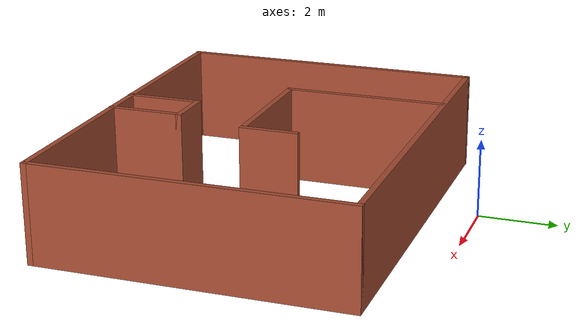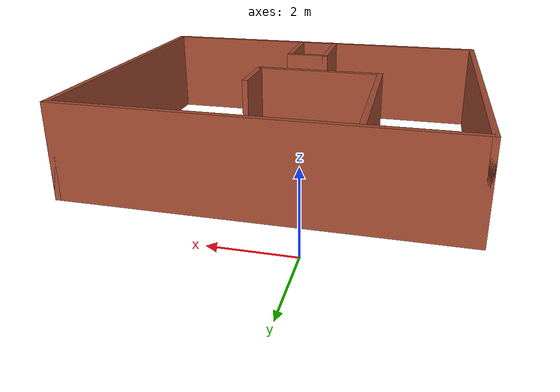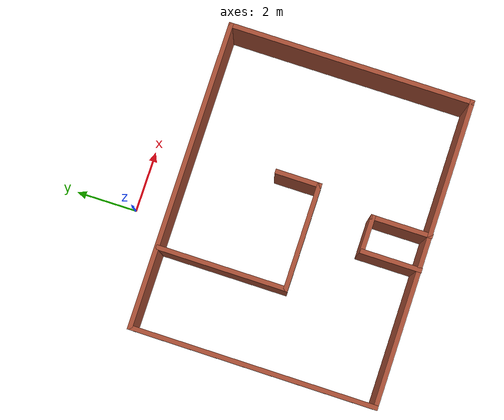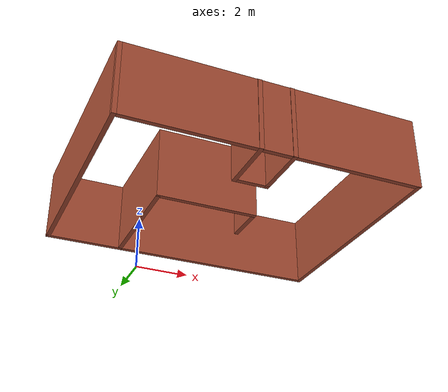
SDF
<?xml version='1.0'?>
<sdf version='1.6'>
  <model name='CASA1'>
    <pose frame=''>1.315 -5.14208 0 0 -0 0</pose>
    <link name='Wall_0'>
      <collision name='Wall_0_Collision'>
        <geometry>
          <box>
            <size>10 0.15 2.5</size>
          </box>
        </geometry>
        <pose frame=''>0 0 1.25 0 -0 0</pose>
      </collision>
      <visual name='Wall_0_Visual'>
        <pose frame=''>0 0 1.25 0 -0 0</pose>
        <geometry>
          <box>
            <size>10 0.15 2.5</size>
          </box>
        </geometry>
        <material>
          <script>
            <uri>file://media/materials/scripts/gazebo.material</uri>
            <name>Gazebo/Bricks</name>
          </script>
          <ambient>1 1 1 1</ambient>
        </material>
        <meta>
          <layer>0</layer>
        </meta>
      </visual>
      <pose frame=''>0 3.93208 0 0 -0 0</pose>
    </link>
    <link name='Wall_13'>
      <collision name='Wall_13_Collision'>
        <geometry>
          <box>
            <size>2 0.15 2.5</size>
          </box>
        </geometry>
        <pose frame=''>0 0 1.25 0 -0 0</pose>
      </collision>
      <visual name='Wall_13_Visual'>
        <pose frame=''>0 0 1.25 0 -0 0</pose>
        <geometry>
          <box>
            <size>2 0.15 2.5</size>
          </box>
        </geometry>
        <material>
          <script>
            <uri>file://media/materials/scripts/gazebo.material</uri>
            <name>Gazebo/Bricks</name>
          </script>
          <ambient>1 1 1 1</ambient>
        </material>
        <meta>
          <layer>0</layer>
        </meta>
      </visual>
      <pose frame=''>-0.526536 -3.00708 0 0 -0 1.5708</pose>
    </link>
    <link name='Wall_14'>
      <collision name='Wall_14_Collision'>
        <geometry>
          <box>
            <size>1.25 0.15 2.5</size>
          </box>
        </geometry>
        <pose frame=''>0 0 1.25 0 -0 0</pose>
      </collision>
      <visual name='Wall_14_Visual'>
        <pose frame=''>0 0 1.25 0 -0 0</pose>
        <geometry>
          <box>
            <size>1.25 0.15 2.5</size>
          </box>
        </geometry>
        <material>
          <script>
            <uri>file://media/materials/scripts/gazebo.material</uri>
            <name>Gazebo/Bricks</name>
          </script>
          <ambient>1 1 1 1</ambient>
        </material>
        <meta>
          <layer>0</layer>
        </meta>
      </visual>
      <pose frame=''>0.023464 -2.08208 0 0 -0 0</pose>
    </link>
    <link name='Wall_15'>
      <collision name='Wall_15_Collision'>
        <geometry>
          <box>
            <size>2 0.15 2.5</size>
          </box>
        </geometry>
        <pose frame=''>0 0 1.25 0 -0 0</pose>
      </collision>
      <visual name='Wall_15_Visual'>
        <pose frame=''>0 0 1.25 0 -0 0</pose>
        <geometry>
          <box>
            <size>2 0.15 2.5</size>
          </box>
        </geometry>
        <material>
          <script>
            <uri>file://media/materials/scripts/gazebo.material</uri>
            <name>Gazebo/Bricks</name>
          </script>
          <ambient>1 1 1 1</ambient>
        </material>
        <meta>
          <layer>0</layer>
        </meta>
      </visual>
      <pose frame=''>0.573464 -3.00708 0 0 -0 -1.5708</pose>
    </link>
    <link name='Wall_2'>
      <collision name='Wall_2_Collision'>
        <geometry>
          <box>
            <size>8 0.15 2.5</size>
          </box>
        </geometry>
        <pose frame=''>0 0 1.25 0 -0 0</pose>
      </collision>
      <visual name='Wall_2_Visual'>
        <pose frame=''>0 0 1.25 0 -0 0</pose>
        <geometry>
          <box>
            <size>8 0.15 2.5</size>
          </box>
        </geometry>
        <material>
          <script>
            <uri>file://media/materials/scripts/gazebo.material</uri>
            <name>Gazebo/Bricks</name>
          </script>
          <ambient>1 1 1 1</ambient>
        </material>
        <meta>
          <layer>0</layer>
        </meta>
      </visual>
      <pose frame=''>4.925 0.00708 0 0 -0 -1.5708</pose>
    </link>
    <link name='Wall_3'>
      <collision name='Wall_3_Collision'>
        <geometry>
          <box>
            <size>10 0.15 2.5</size>
          </box>
        </geometry>
        <pose frame=''>0 0 1.25 0 -0 0</pose>
      </collision>
      <visual name='Wall_3_Visual'>
        <pose frame=''>0 0 1.25 0 -0 0</pose>
        <geometry>
          <box>
            <size>10 0.15 2.5</size>
          </box>
        </geometry>
        <material>
          <script>
            <uri>file://media/materials/scripts/gazebo.material</uri>
            <name>Gazebo/Bricks</name>
          </script>
          <ambient>1 1 1 1</ambient>
        </material>
        <meta>
          <layer>0</layer>
        </meta>
      </visual>
      <pose frame=''>0 -3.91792 0 0 -0 3.14159</pose>
    </link>
    <link name='Wall_4'>
      <collision name='Wall_4_Collision'>
        <geometry>
          <box>
            <size>8 0.15 2.5</size>
          </box>
        </geometry>
        <pose frame=''>0 0 1.25 0 -0 0</pose>
      </collision>
      <visual name='Wall_4_Visual'>
        <pose frame=''>0 0 1.25 0 -0 0</pose>
        <geometry>
          <box>
            <size>8 0.15 2.5</size>
          </box>
        </geometry>
        <material>
          <script>
            <uri>file://media/materials/scripts/gazebo.material</uri>
            <name>Gazebo/Bricks</name>
          </script>
          <ambient>1 1 1 1</ambient>
        </material>
        <meta>
          <layer>0</layer>
        </meta>
      </visual>
      <pose frame=''>-4.925 0.00708 0 0 -0 1.5708</pose>
    </link>
    <link name='Wall_6'>
      <collision name='Wall_6_Collision'>
        <geometry>
          <box>
            <size>4.25 0.15 2.5</size>
          </box>
        </geometry>
        <pose frame=''>0 0 1.25 0 -0 0</pose>
      </collision>
      <visual name='Wall_6_Visual'>
        <pose frame=''>0 0 1.25 0 -0 0</pose>
        <geometry>
          <box>
            <size>4.25 0.15 2.5</size>
          </box>
        </geometry>
        <material>
          <script>
            <uri>file://media/materials/scripts/gazebo.material</uri>
            <name>Gazebo/Bricks</name>
          </script>
          <ambient>1 1 1 1</ambient>
        </material>
        <meta>
          <layer>0</layer>
        </meta>
      </visual>
      <pose frame=''>-2.34488 1.83122 0 0 -0 -1.5708</pose>
    </link>
    <link name='Wall_7'>
      <collision name='Wall_7_Collision'>
        <geometry>
          <box>
            <size>3.5 0.15 2.5</size>
          </box>
        </geometry>
        <pose frame=''>0 0 1.25 0 -0 0</pose>
      </collision>
      <visual name='Wall_7_Visual'>
        <pose frame=''>0 0 1.25 0 -0 0</pose>
        <geometry>
          <box>
            <size>3.5 0.15 2.5</size>
          </box>
        </geometry>
        <material>
          <script>
            <uri>file://media/materials/scripts/gazebo.material</uri>
            <name>Gazebo/Bricks</name>
          </script>
          <ambient>1 1 1 1</ambient>
        </material>
        <meta>
          <layer>0</layer>
        </meta>
      </visual>
      <pose frame=''>-0.669875 -0.21878 0 0 -0 0</pose>
    </link>
    <link name='Wall_8'>
      <collision name='Wall_8_Collision'>
        <geometry>
          <box>
            <size>1.5 0.15 2.5</size>
          </box>
        </geometry>
        <pose frame=''>0 0 1.25 0 -0 0</pose>
      </collision>
      <visual name='Wall_8_Visual'>
        <pose frame=''>0 0 1.25 0 -0 0</pose>
        <geometry>
          <box>
            <size>1.5 0.15 2.5</size>
          </box>
        </geometry>
        <material>
          <script>
            <uri>file://media/materials/scripts/gazebo.material</uri>
            <name>Gazebo/Bricks</name>
          </script>
          <ambient>1 1 1 1</ambient>
        </material>
        <meta>
          <layer>0</layer>
        </meta>
      </visual>
      <pose frame=''>1.00513 0.45622 0 0 -0 1.5708</pose>
    </link>
    <static>1</static>
  </model>
</sdf>
